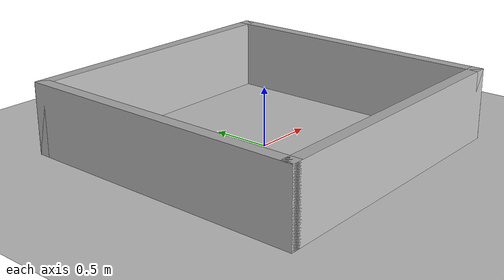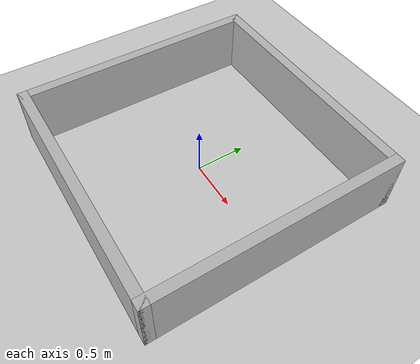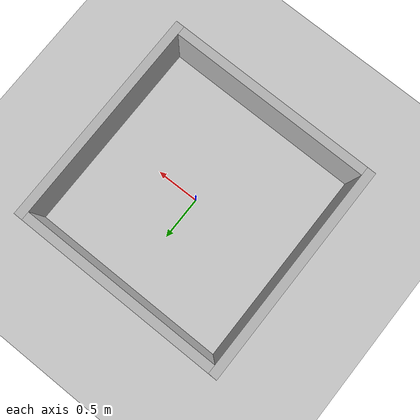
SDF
<?xml version="1.0"?>
<sdf version="1.6">
  <world name="default">
    <include><uri>model://ground_plane</uri></include>
    <include><uri>model://sun</uri></include>
    <physics name="default_physics" type="ode">
      <max_step_size>0.001</max_step_size>
      <real_time_update_rate>1000</real_time_update_rate>
    </physics>
    <model name="b2_enclosure">
      <static>true</static>
      <link name="walls">
        <collision name="east"><pose>1.2 0 0.3 0 0 0</pose><geometry><box><size>0.1 2.5 0.6</size></box></geometry></collision>
        <visual name="east"><pose>1.2 0 0.3 0 0 0</pose><geometry><box><size>0.1 2.5 0.6</size></box></geometry></visual>
        <collision name="west"><pose>-1.2 0 0.3 0 0 0</pose><geometry><box><size>0.1 2.5 0.6</size></box></geometry></collision>
        <visual name="west"><pose>-1.2 0 0.3 0 0 0</pose><geometry><box><size>0.1 2.5 0.6</size></box></geometry></visual>
        <collision name="north"><pose>0 1.2 0.3 0 0 0</pose><geometry><box><size>2.5 0.1 0.6</size></box></geometry></collision>
        <visual name="north"><pose>0 1.2 0.3 0 0 0</pose><geometry><box><size>2.5 0.1 0.6</size></box></geometry></visual>
        <collision name="south"><pose>0 -1.2 0.3 0 0 0</pose><geometry><box><size>2.5 0.1 0.6</size></box></geometry></collision>
        <visual name="south"><pose>0 -1.2 0.3 0 0 0</pose><geometry><box><size>2.5 0.1 0.6</size></box></geometry></visual>
      </link>
    </model>
  </world>
</sdf>
